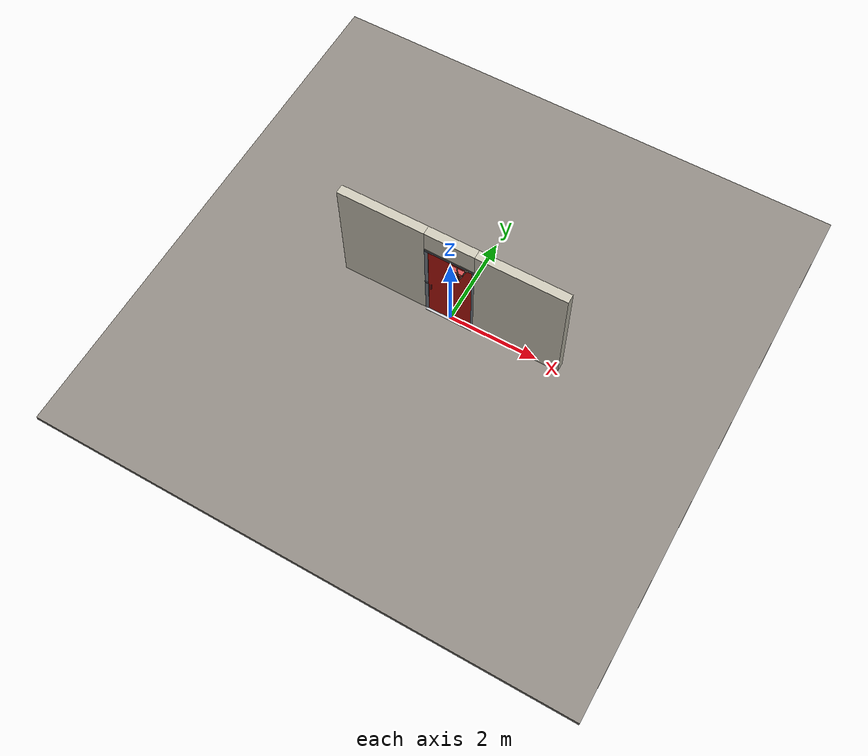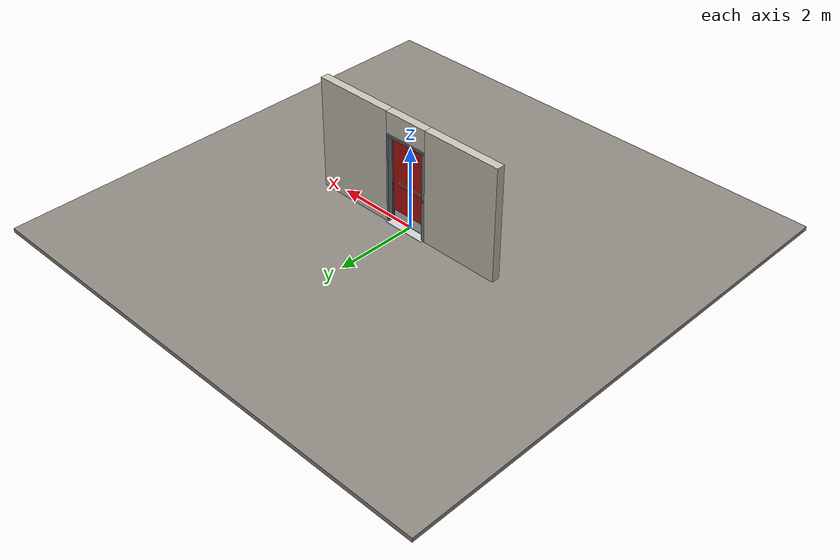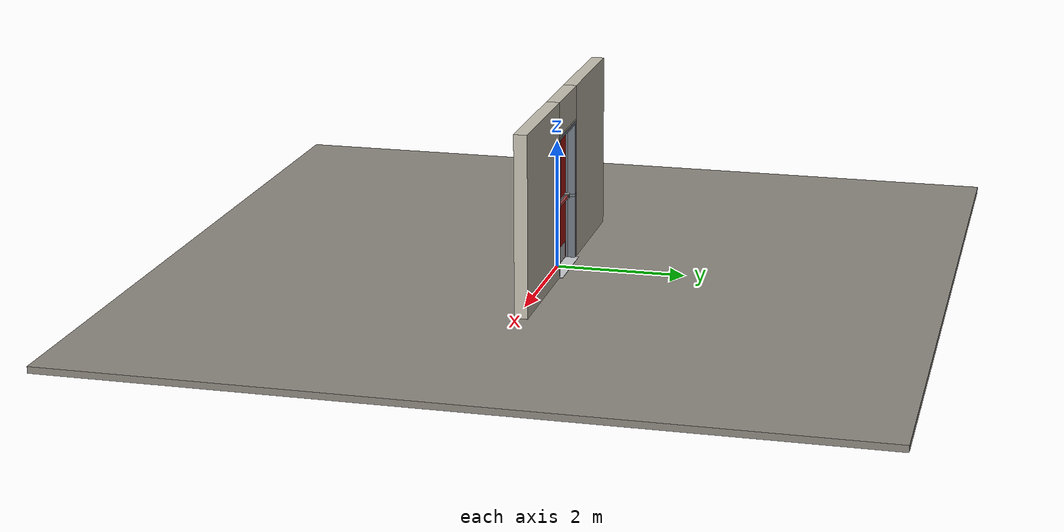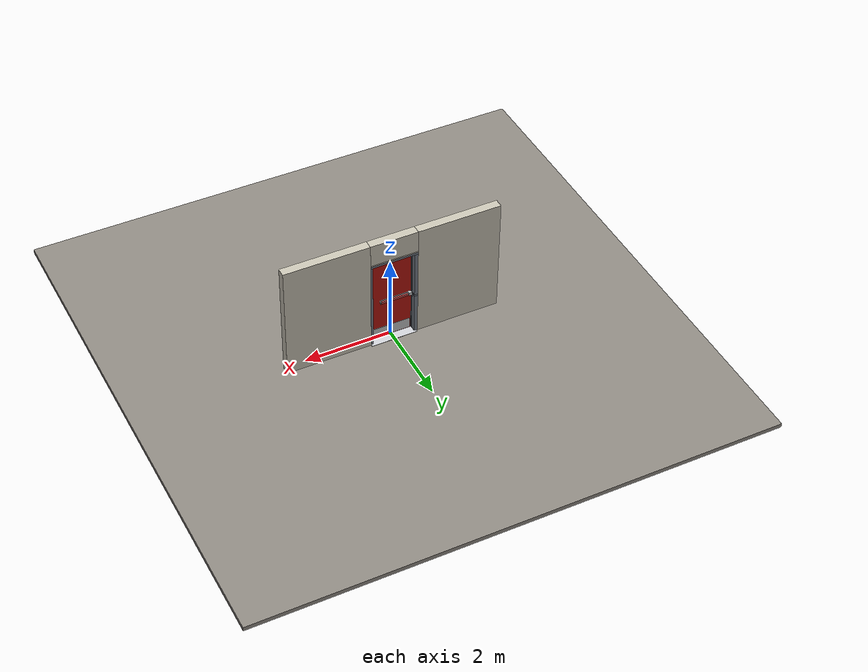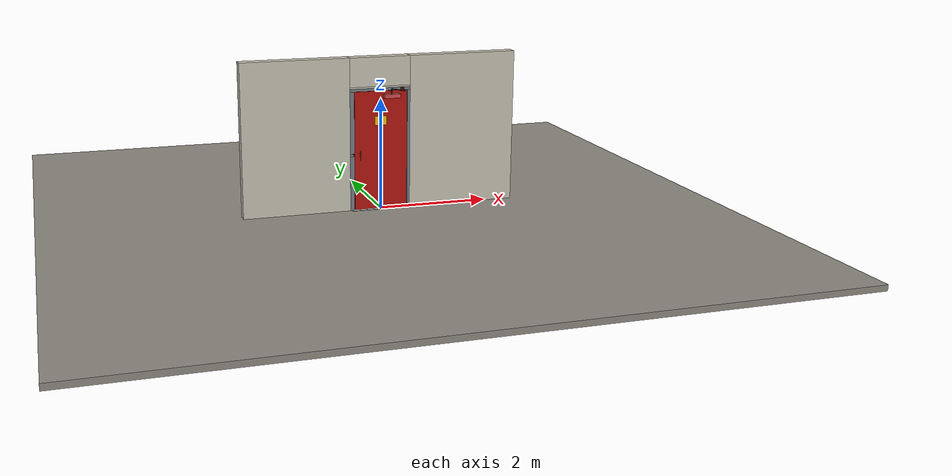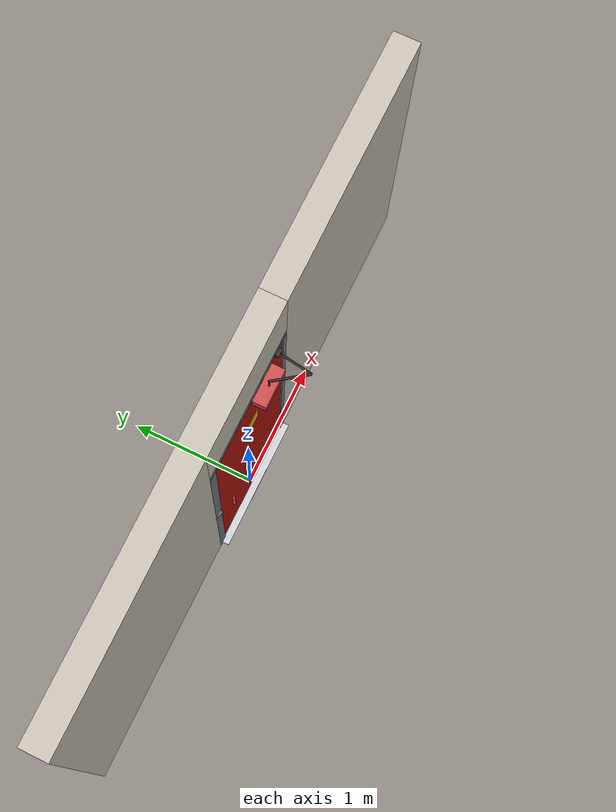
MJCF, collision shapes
<?xml version="1.0" ?>
<mujoco model="db0640_swing_single_full">
  <compiler angle="radian" meshdir="../../hardware" texturedir="../../textures" autolimits="true" inertiafromgeom="false"/>
  <option timestep="0.002" integrator="implicitfast" cone="elliptic" impratio="10" noslip_iterations="3">
    <flag multiccd="enable"/>
  </option>
  <size memory="16M"/>
  <default>
    <geom condim="4" solref="0.005 1" solimp="0.95 0.99 0.001"/>
    <joint solreflimit="0.005 1" solimplimit="0.95 0.99 0.001"/>
    <tendon solreflimit="0.005 1"/>
    <equality solref="0.002 1"/>
  </default>
  <visual>
    <headlight ambient="0.4 0.4 0.4" diffuse="0.7 0.7 0.7" specular="0.2 0.2 0.2"/>
    <quality shadowsize="4096"/>
    <map znear="0.01" zfar="60"/>
  </visual>
  <asset>
    <mesh name="closer_body_fdc4667657" file="closer_body_fdc4667657.obj"/>
    <mesh name="exit_sign_a6449bfa2c" file="exit_sign_a6449bfa2c.obj"/>
    <mesh name="hinge_e22b26c0c1" file="hinge_e22b26c0c1.obj"/>
    <mesh name="hinge_jamb_e1d088f8dc" file="hinge_jamb_e1d088f8dc.obj"/>
    <mesh name="pull_1e5d69a91a" file="pull_1e5d69a91a.obj"/>
    <mesh name="touchbar_pad_674bfcd49e" file="touchbar_pad_674bfcd49e.obj"/>
    <material name="mat_floor" rgba="0.55 0.53 0.5 1" specular="0.2" shininess="0.15" reflectance="0"/>
    <material name="mat_wall" rgba="0.78 0.76 0.7 1" specular="0.2" shininess="0.1" reflectance="0"/>
    <material name="mat_leaf" rgba="0.7 0.08 0.05 1" specular="0.23" shininess="0.36" reflectance="0.02"/>
    <material name="mat_hinge" rgba="0.65 0.66 0.68 1" specular="0.74" shininess="0.5" reflectance="0.36"/>
    <material name="mat_op_stainless" rgba="0.75 0.76 0.77 1" specular="0.8" shininess="0.65" reflectance="0.4"/>
    <material name="mat_bolt" rgba="0.75 0.76 0.77 1" specular="0.8" shininess="0.65" reflectance="0.4"/>
    <material name="mat_maglock" rgba="0.22 0.17 0.13 1" specular="0.8" shininess="0.6" reflectance="0.4"/>
    <material name="mat_frame" rgba="0.45 0.48 0.52 1" specular="0.32" shininess="0.6" reflectance="0.08"/>
    <material name="mat_seal" rgba="0.1 0.1 0.1 1" specular="0.2" shininess="0.1" reflectance="0"/>
    <material name="mat_threshold" rgba="0.8 0.81 0.83 1" specular="0.8" shininess="0.6" reflectance="0.4"/>
    <material name="mat_closer" rgba="0.22 0.17 0.13 1" specular="0.8" shininess="0.6" reflectance="0.4"/>
    <material name="mat_kick" rgba="0.75 0.76 0.77 1" specular="0.8" shininess="0.65" reflectance="0.4"/>
    <material name="mat_exit_sign" rgba="0.85 0.1 0.1 1" specular="0.2" shininess="0.6" reflectance="0"/>
    <material name="mat_sign_bracket" rgba="0.8 0.81 0.83 1" specular="0.8" shininess="0.6" reflectance="0.4"/>
    <material name="mat_placard" rgba="0.95 0.75 0.05 1" specular="0.2" shininess="0.5" reflectance="0"/>
    <texture name="skybox" type="skybox" builtin="gradient" rgb1="0.6 0.7 0.85" rgb2="0.9 0.92 0.95" width="256" height="256"/>
  </asset>
  <worldbody>
    <light name="sun" pos="1.5 -2.5 4" dir="-0.3 0.5 -0.8" directional="true" diffuse="0.8 0.8 0.8" specular="0.3 0.3 0.3" castshadow="true"/>
    <light name="fill" pos="-1.5 2.5 3" dir="0.3 -0.5 -0.7" directional="true" diffuse="0.35 0.35 0.4" castshadow="false"/>
    <camera name="robot_view" pos="0 -2.566812 1.812087" xyaxes="1 0 0 0 0.26963 0.962964" fovy="52"/>
    <camera name="far_view" pos="0 2.708813 1.812087" xyaxes="-1 0 0 0 -0.26963 0.962964" fovy="52"/>
    <camera name="iso" pos="-2.004737 -2.144762 2.234138" xyaxes="0.741536 -0.670913 0 0.242917 0.268487 0.932151" fovy="46"/>
    <camera name="detail_handle" pos="-0.212 -0.882 1.296" xyaxes="0.97561 0.219512 0 -0.070934 0.315262 0.94635" fovy="38"/>
    <geom name="floor" type="box" size="6 6 0.05" pos="0 0 -0.05" material="mat_floor" group="0" contype="1" conaffinity="1" friction="0.8 0.005 0.0001" density="2400"/>
    <geom name="wall_left" type="box" size="0.967 0.1 1.3735" pos="-1.533 0.071 1.3735" material="mat_wall" group="0" contype="1" conaffinity="1" friction="0.6 0.005 0.0001" density="800"/>
    <geom name="wall_right" type="box" size="0.982 0.1 1.3735" pos="1.518 0.071 1.3735" material="mat_wall" group="0" contype="1" conaffinity="1" friction="0.6 0.005 0.0001" density="800"/>
    <geom name="wall_header" type="box" size="0.551 0.1 0.26" pos="-0.015 0.071 2.487" material="mat_wall" group="0" contype="1" conaffinity="1" friction="0.6 0.005 0.0001" density="800"/>
    <geom name="hinge_0_jamb" type="mesh" mesh="hinge_jamb_e1d088f8dc" pos="0.483 -0.029 0.259" quat="0 0 1 0" material="mat_hinge" group="1" contype="0" conaffinity="0" density="7850"/>
    <geom name="hinge_1_jamb" type="mesh" mesh="hinge_jamb_e1d088f8dc" pos="0.483 -0.029 1.076" quat="0 0 1 0" material="mat_hinge" group="1" contype="0" conaffinity="0" density="7850"/>
    <geom name="hinge_2_jamb" type="mesh" mesh="hinge_jamb_e1d088f8dc" pos="0.483 -0.029 1.963" quat="0 0 1 0" material="mat_hinge" group="1" contype="0" conaffinity="0" density="7850"/>
    <geom name="leaf_maglock_body" type="box" size="0.125 0.025 0.02" pos="-0.182 0.057 2.082" material="mat_maglock" group="0" contype="1" conaffinity="1" friction="0.6 0.005 0.0001" density="2000"/>
    <geom name="leaf_maglock_bracket" type="box" size="0.09 0.025 0.0225" pos="-0.182 0.057 2.1245" material="mat_maglock" group="1" contype="0" conaffinity="0" density="7850"/>
    <geom name="jamb_hinge" type="box" size="0.025 0.1 1.0735" pos="0.511 0.071 1.0735" material="mat_frame" group="0" contype="1" conaffinity="1" friction="0.6 0.005 0.0001" density="300"/>
    <geom name="strike_1016_wall_n" type="box" size="0.04 0.058 0.02" pos="-0.526 0.113 1.016" material="mat_frame" group="0" contype="1" conaffinity="1" friction="0.6 0.005 0.0001" density="300"/>
    <geom name="strike_1016_wall_p" type="box" size="0.04 0.008 0.02" pos="-0.526 0.025 1.016" material="mat_frame" group="0" contype="1" conaffinity="1" friction="0.6 0.005 0.0001" density="300"/>
    <geom name="strike_1016_ramp" type="box" size="0.04 0.034482 0.02" pos="-0.534281 -0.0044 1.016" quat="0.989198 0 0 -0.146587" material="mat_frame" group="0" contype="1" conaffinity="1" friction="0.12 0.005 0.0001" density="300"/>
    <geom name="strike_1016_back" type="box" size="0.0285 0.011 0.02" pos="-0.5375 0.044 1.016" material="mat_frame" group="0" contype="1" conaffinity="1" friction="0.6 0.005 0.0001" density="300"/>
    <geom name="jamb_strike_0" type="box" size="0.04 0.1 0.498" pos="-0.526 0.071 0.498" material="mat_frame" group="0" contype="1" conaffinity="1" friction="0.6 0.005 0.0001" density="300"/>
    <geom name="jamb_strike_1" type="box" size="0.04 0.1 0.5555" pos="-0.526 0.071 1.5915" material="mat_frame" group="0" contype="1" conaffinity="1" friction="0.6 0.005 0.0001" density="300"/>
    <geom name="jamb_head" type="box" size="0.551 0.1 0.025" pos="-0.015 0.071 2.172" material="mat_frame" group="0" contype="1" conaffinity="1" friction="0.6 0.005 0.0001" density="300"/>
    <geom name="head_stud" type="box" size="0.551 0.1 0.015" pos="-0.015 0.071 2.212" material="mat_wall" group="0" contype="1" conaffinity="1" friction="0.6 0.005 0.0001" density="500"/>
    <geom name="stop_hinge" type="box" size="0.0055 0.016 1.0735" pos="0.4805 0.0385 1.0735" material="mat_frame" group="0" contype="1" conaffinity="1" friction="0.6 0.005 0.0001" density="300"/>
    <geom name="stop_strike" type="box" size="0.0055 0.016 0.48425" pos="-0.4805 0.0385 0.48425" material="mat_frame" group="0" contype="1" conaffinity="1" friction="0.6 0.005 0.0001" density="300"/>
    <geom name="stop_strike_1" type="box" size="0.0055 0.016 0.54175" pos="-0.4805 0.0385 1.60525" material="mat_frame" group="0" contype="1" conaffinity="1" friction="0.6 0.005 0.0001" density="300"/>
    <geom name="stop_head" type="box" size="0.486 0.016 0.0055" pos="0 0.0385 2.1415" material="mat_frame" group="0" contype="1" conaffinity="1" friction="0.6 0.005 0.0001" density="300"/>
    <geom name="seal_hinge" type="box" size="0.004 0.0025 1.0735" pos="0.483 0.0245 1.0735" material="mat_seal" group="1" contype="0" conaffinity="0" density="1100"/>
    <geom name="seal_strike" type="box" size="0.004 0.0025 0.48425" pos="-0.483 0.0245 0.48425" material="mat_seal" group="1" contype="0" conaffinity="0" density="1100"/>
    <geom name="seal_strike_1" type="box" size="0.004 0.0025 0.54175" pos="-0.483 0.0245 1.60525" material="mat_seal" group="1" contype="0" conaffinity="0" density="1100"/>
    <geom name="seal_head" type="box" size="0.466 0.0025 0.008" pos="0 0.0245 2.135" material="mat_seal" group="1" contype="0" conaffinity="0" density="1100"/>
    <geom name="threshold" type="box" size="0.536 0.15 0.004" pos="0 0.071 0.004" material="mat_threshold" group="0" contype="1" conaffinity="1" friction="0.6 0.005 0.0001" density="2700"/>
    <geom name="closer_bracket" type="box" size="0.03 0.012 0.014" pos="0.386 -0.041 2.177" material="mat_closer" group="1" contype="0" conaffinity="0" density="2700"/>
    <geom name="exit_sign" type="mesh" mesh="exit_sign_a6449bfa2c" pos="0 0.15 2.447" material="mat_exit_sign" group="2" contype="0" conaffinity="0" density="500"/>
    <geom name="exit_sign_bracket" type="box" size="0.05775 0.00875 0.0605" pos="0 0.15 2.287" material="mat_sign_bracket" group="2" contype="0" conaffinity="0" density="7850"/>
    <site name="approach_point" pos="0 -1.5 0" quat="1 0 0 0" size="0.05" rgba="0.2 0.9 0.2 0.5" group="4"/>
    <site name="goal_point" pos="0 1.5 0" quat="1 0 0 0" size="0.05" rgba="0.2 0.9 0.2 0.5" group="4"/>
    <site name="door_plane_center" pos="0 0 1.0735" quat="1 0 0 0" size="0.02" rgba="0.2 0.9 0.2 0.5" group="4"/>
    <body name="leaf" pos="0.486 0 0">
      <inertial pos="-0.459655 -0.010557 1.216701" mass="70.84583" quat="0.516713 -0.516456 -0.471196 -0.494222" diaginertia="5.096074422 33.215770059 38.190939503"/>
      <joint name="leaf_hinge" type="hinge" axis="0 0 1" pos="-0.003 -0.029 0" limited="true" range="0 1.745329" solreflimit="0.02 1" damping="12.334212" frictionloss="2.311318" stiffness="15.342537" springref="-1.864099" armature="0.02"/>
      <geom name="leaf_slab" type="box" size="0.4825 0.022 1.067" pos="-0.4855 0 1.076" material="mat_leaf" group="0" contype="1" conaffinity="1" friction="0.4 0.005 0.0001" density="1"/>
      <geom name="hinge_0" type="mesh" mesh="hinge_e22b26c0c1" pos="-0.003 -0.029 0.259" quat="0 0 1 0" material="mat_hinge" group="1" contype="0" conaffinity="0" density="7850"/>
      <geom name="hinge_1" type="mesh" mesh="hinge_e22b26c0c1" pos="-0.003 -0.029 1.076" quat="0 0 1 0" material="mat_hinge" group="1" contype="0" conaffinity="0" density="7850"/>
      <geom name="hinge_2" type="mesh" mesh="hinge_e22b26c0c1" pos="-0.003 -0.029 1.963" quat="0 0 1 0" material="mat_hinge" group="1" contype="0" conaffinity="0" density="7850"/>
      <geom name="leaf_exit_device_rail" type="box" size="0.333625 0.006 0.025" pos="-0.554375 0.028 1.016" material="mat_op_stainless" group="0" contype="1" conaffinity="1" friction="0.6 0.005 0.0001" density="3000"/>
      <geom name="leaf_exit_device_rail_end_n" type="box" size="0.01 0.0325 0.025" pos="-0.878 0.0545 1.016" material="mat_op_stainless" group="0" contype="1" conaffinity="1" friction="0.6 0.005 0.0001" density="3000"/>
      <geom name="leaf_exit_device_rail_end_p" type="box" size="0.01 0.0325 0.025" pos="-0.23075 0.0545 1.016" material="mat_op_stainless" group="0" contype="1" conaffinity="1" friction="0.6 0.005 0.0001" density="3000"/>
      <geom name="leaf_exit_device_case" type="box" size="0.034 0.034125 0.0375" pos="-0.922 0.056125 1.016" material="mat_op_stainless" group="0" contype="1" conaffinity="1" friction="0.6 0.005 0.0001" density="3000"/>
      <geom name="leaf_far_pull_n" type="mesh" mesh="pull_1e5d69a91a" pos="-0.878 -0.022 1.016" quat="0 0 -0.707107 0.707107" material="mat_op_stainless" group="1" contype="0" conaffinity="0" density="3000"/>
      <geom name="leaf_far_pull_col_n" type="capsule" size="0.0095 0.08" pos="-0.878 -0.082 1.016" material="mat_op_stainless" group="3" contype="1" conaffinity="1" rgba="0.8 0.3 0.3 0.25" friction="0.7 0.01 0.0001" density="3000"/>
      <geom name="leaf_maglock_armature" type="box" size="0.09 0.005 0.02" pos="-0.668 0.027 2.082" material="mat_maglock" group="1" contype="0" conaffinity="0" density="7800"/>
      <geom name="closer_body" type="mesh" mesh="closer_body_fdc4667657" pos="-0.3 -0.022 2.054" quat="0 0 -0.707107 0.707107" material="mat_closer" group="1" contype="0" conaffinity="0" density="2000"/>
      <geom name="closer_body_col" type="box" size="0.145 0.05 0.035" pos="-0.3 -0.072 2.054" material="mat_closer" group="3" contype="1" conaffinity="1" rgba="0.8 0.3 0.3 0.25" friction="0.6 0.005 0.0001" density="2000"/>
      <geom name="closer_pinion_shaft" type="cylinder" size="0.008 0.0615" pos="-0.3 -0.072 2.1155" material="mat_closer" group="1" contype="0" conaffinity="0" density="2700"/>
      <geom name="kick_plate_p" type="box" size="0.4525 0.0008 0.125" pos="-0.4855 0.0228 0.144" material="mat_kick" group="2" contype="0" conaffinity="0" density="7900"/>
      <geom name="warning_placard" type="box" size="0.11 0.001 0.08" pos="-0.4855 -0.023 1.6095" material="mat_placard" group="2" contype="0" conaffinity="0" density="1000"/>
      <site name="leaf_far_pull_grip_n" pos="-0.878 -0.082 1.016" quat="1 0 0 0" size="0.012" rgba="0.2 0.9 0.2 0.5" group="4"/>
      <site name="leaf_edge_mid" pos="-0.968 0 1.067" quat="1 0 0 0" size="0.02" rgba="0.2 0.9 0.2 0.5" group="4"/>
      <body name="leaf_exit_device" pos="-0.554375 0.022 1.016">
        <inertial pos="0 0.05 0" mass="5.032125" quat="0 0 0.707107 0.707107" diaginertia="0.00122658 0.162223785 0.162695547"/>
        <joint name="leaf_exit_device_slide" type="slide" axis="0 -1 0" limited="true" range="0 0.016" damping="157.715567" frictionloss="0.5" stiffness="1200" springref="-0.015" armature="0.15"/>
        <geom name="leaf_exit_device_pad" type="mesh" mesh="touchbar_pad_674bfcd49e" pos="0 0 0" quat="0 0 0.707107 0.707107" material="mat_op_stainless" group="1" contype="0" conaffinity="0" density="3000"/>
        <geom name="leaf_exit_device_pad_col" type="box" size="0.310625 0.015 0.0225" pos="0 0.05 0" material="mat_op_stainless" group="3" contype="1" conaffinity="1" rgba="0.8 0.3 0.3 0.25" friction="0.8 0.01 0.0001" density="3000"/>
        <site name="leaf_exit_device_push" pos="0 0.065 0" quat="1 0 0 0" size="0.015" rgba="0.2 0.9 0.2 0.5" group="4"/>
      </body>
      <body name="leaf_latch_bolt" pos="-0.968 0.044 1.016">
        <inertial pos="0.0055 0 0" mass="0.102826" quat="0.92388 0.382683 0 0" diaginertia="0.000004365 0.000018287 0.000018287"/>
        <joint name="leaf_latch_bolt_slide" type="slide" axis="1 0 0" limited="true" range="0 0.019" damping="2" frictionloss="0.3" stiffness="800" springref="-0.01" armature="0.1"/>
        <geom name="leaf_latch_bolt_capsule" type="capsule" size="0.0095 0.015" pos="0.0055 0 0" quat="0.707107 0 -0.707107 0" material="mat_bolt" group="0" contype="1" conaffinity="1" friction="0.2 0.005 0.0001" density="8500"/>
      </body>
      <body name="closer_arm_main" pos="-0.3 -0.072 2.177" quat="0.890947 0 0 -0.454107">
        <inertial pos="0.14 0 0" mass="0.12096" quat="1 0 0 0" diaginertia="0.000003588 0.00079128 0.000792852"/>
        <joint name="closer_pinion" type="hinge" axis="0 0 1" limited="false" damping="0.01" armature="0.002"/>
        <geom name="closer_arm_main_geom" type="box" size="0.14 0.008 0.005" pos="0.14 0 0" material="mat_closer" group="1" contype="0" conaffinity="0" density="2700"/>
        <body name="closer_arm_fore" pos="0.28 0 0" quat="0.373215 0 0 0.927745">
          <inertial pos="0.128088 0 0" mass="0.076531" quat="1 0 0 0" diaginertia="0.000001771 0.000437665 0.000438201"/>
          <joint name="closer_elbow" type="hinge" axis="0 0 1" limited="false" damping="0.01" armature="0.002"/>
          <geom name="closer_arm_fore_geom" type="box" size="0.1125 0.007 0.004" pos="0.1125 0 0" material="mat_closer" group="1" contype="0" conaffinity="0" density="2700"/>
          <geom name="closer_fore_neck" type="box" size="0.0175 0.003 0.003" pos="0.2425 0 0" material="mat_closer" group="1" contype="0" conaffinity="0" density="2700"/>
          <geom name="closer_fore_pivot" type="cylinder" size="0.005 0.012" pos="0.26 0 0" material="mat_closer" group="1" contype="0" conaffinity="0" density="2700"/>
        </body>
      </body>
    </body>
  </worldbody>
  <tendon>
    <fixed name="leaf_latch_bolt_coupling" limited="true" range="0 10">
      <joint joint="leaf_latch_bolt_slide" coef="1"/>
      <joint joint="leaf_exit_device_slide" coef="-1.357143"/>
    </fixed>
  </tendon>
  <equality>
    <weld name="leaf_maglock" body1="leaf" body2="world" active="true"/>
    <connect name="closer_arm_connect" body1="closer_arm_fore" body2="world" anchor="0.26 0 0" active="true"/>
  </equality>
  <contact>
    <exclude body1="closer_arm_main" body2="leaf"/>
    <exclude body1="closer_arm_fore" body2="leaf"/>
    <exclude body1="closer_arm_main" body2="closer_arm_fore"/>
  </contact>
  <sensor>
    <jointpos name="leaf_hinge_pos" joint="leaf_hinge"/>
    <jointvel name="leaf_hinge_vel" joint="leaf_hinge"/>
    <jointpos name="leaf_exit_device_slide_pos" joint="leaf_exit_device_slide"/>
    <jointvel name="leaf_exit_device_slide_vel" joint="leaf_exit_device_slide"/>
    <jointpos name="leaf_latch_bolt_slide_pos" joint="leaf_latch_bolt_slide"/>
    <jointvel name="leaf_latch_bolt_slide_vel" joint="leaf_latch_bolt_slide"/>
  </sensor>
</mujoco>
